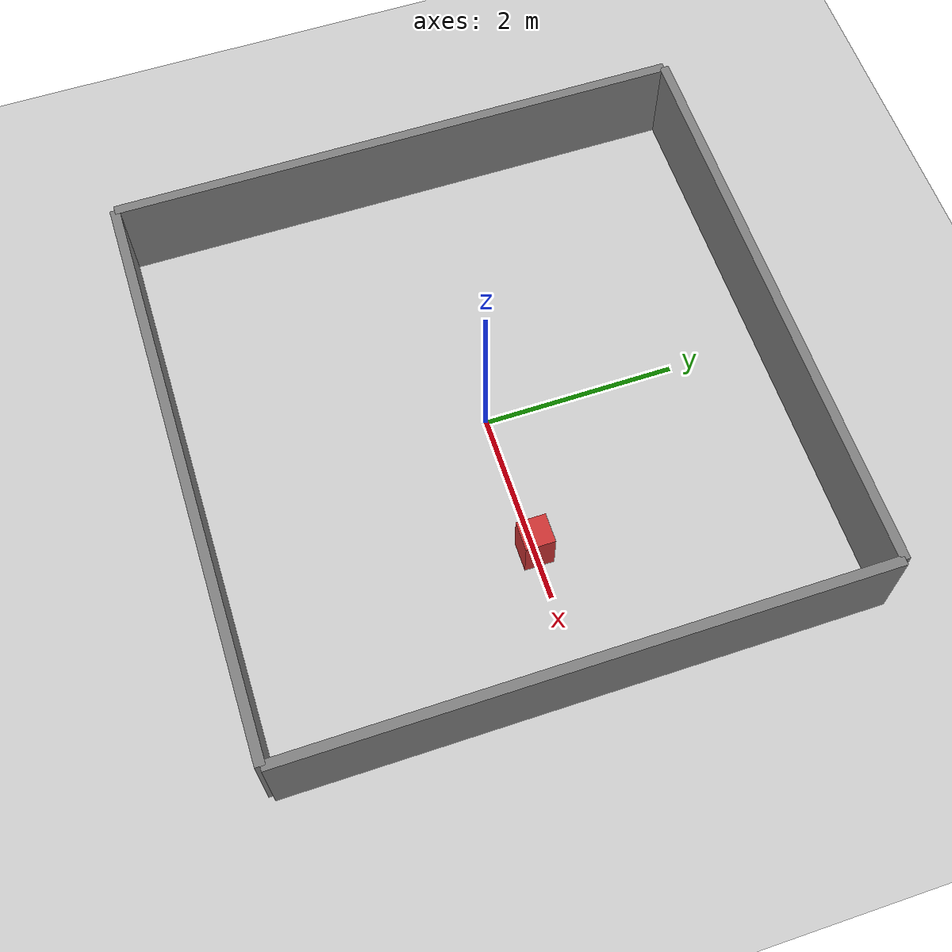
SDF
<?xml version="1.0"?>
<sdf version="1.6">
  <world name="tof_robot_world">

    <include><uri>model://ground_plane</uri></include>
    <include><uri>model://sun</uri></include>

    <!-- Surrounding walls -->
    <model name="wall_north">
      <static>true</static>
      <pose>0 3 0.5 0 0 0</pose>
      <link name="link">
        <collision name="col"><geometry><box><size>6 0.1 1</size></box></geometry></collision>
        <visual name="vis"><geometry><box><size>6 0.1 1</size></box></geometry>
          <material><ambient>0.5 0.5 0.5 1</ambient></material></visual>
      </link>
    </model>

    <model name="wall_south">
      <static>true</static>
      <pose>0 -3 0.5 0 0 0</pose>
      <link name="link">
        <collision name="col"><geometry><box><size>6 0.1 1</size></box></geometry></collision>
        <visual name="vis"><geometry><box><size>6 0.1 1</size></box></geometry>
          <material><ambient>0.5 0.5 0.5 1</ambient></material></visual>
      </link>
    </model>

    <model name="wall_east">
      <static>true</static>
      <pose>3 0 0.5 0 0 0</pose>
      <link name="link">
        <collision name="col"><geometry><box><size>0.1 6 1</size></box></geometry></collision>
        <visual name="vis"><geometry><box><size>0.1 6 1</size></box></geometry>
          <material><ambient>0.5 0.5 0.5 1</ambient></material></visual>
      </link>
    </model>

    <model name="wall_west">
      <static>true</static>
      <pose>-3 0 0.5 0 0 0</pose>
      <link name="link">
        <collision name="col"><geometry><box><size>0.1 6 1</size></box></geometry></collision>
        <visual name="vis"><geometry><box><size>0.1 6 1</size></box></geometry>
          <material><ambient>0.5 0.5 0.5 1</ambient></material></visual>
      </link>
    </model>

    <!-- Internal obstacle box -->
    <model name="obstacle_box">
      <static>true</static>
      <pose>1.5 0 0.25 0 0 0</pose>
      <link name="link">
        <collision name="col"><geometry><box><size>0.3 0.3 0.5</size></box></geometry></collision>
        <visual name="vis"><geometry><box><size>0.3 0.3 0.5</size></box></geometry>
          <material><ambient>0.8 0.2 0.2 1</ambient></material></visual>
      </link>
    </model>

    <!-- Robot spawned at origin -->
    <gui fullscreen="0">
      <camera name="user_camera">
        <pose>0 -5 3 0 0.5 1.57</pose>
      </camera>
    </gui>

  </world>
</sdf>
